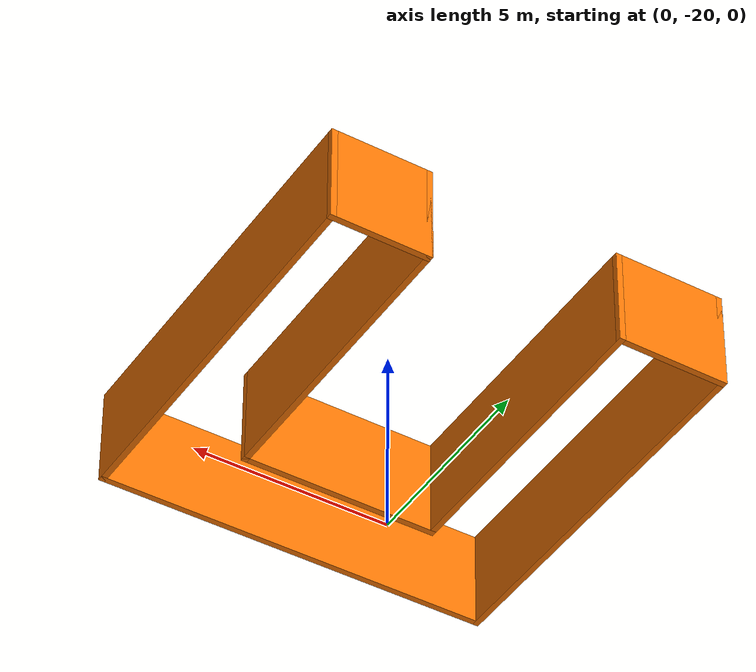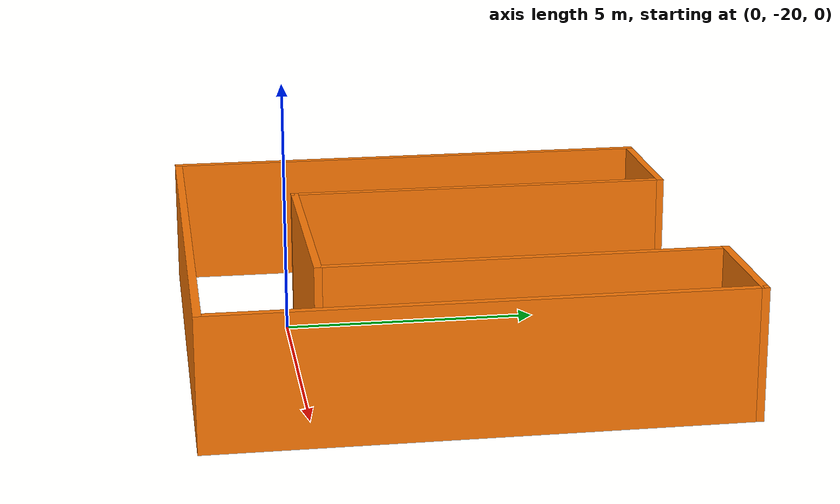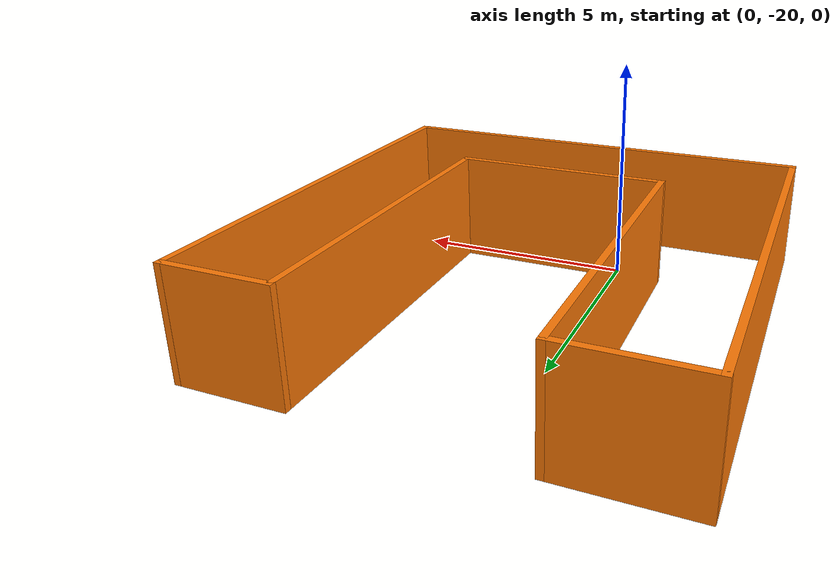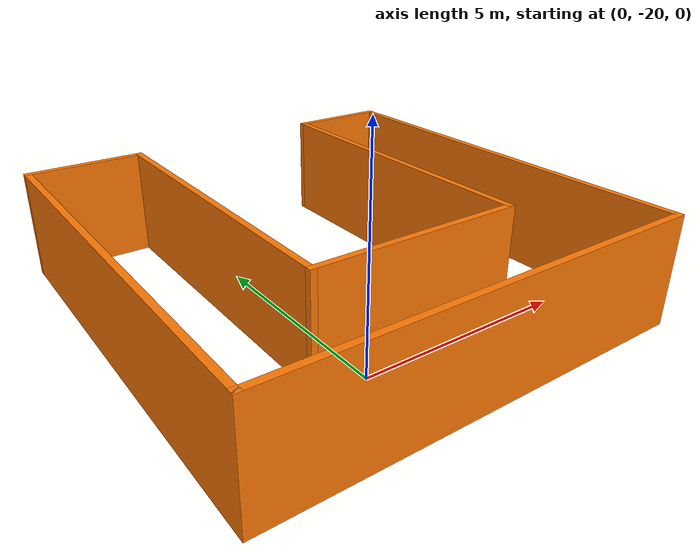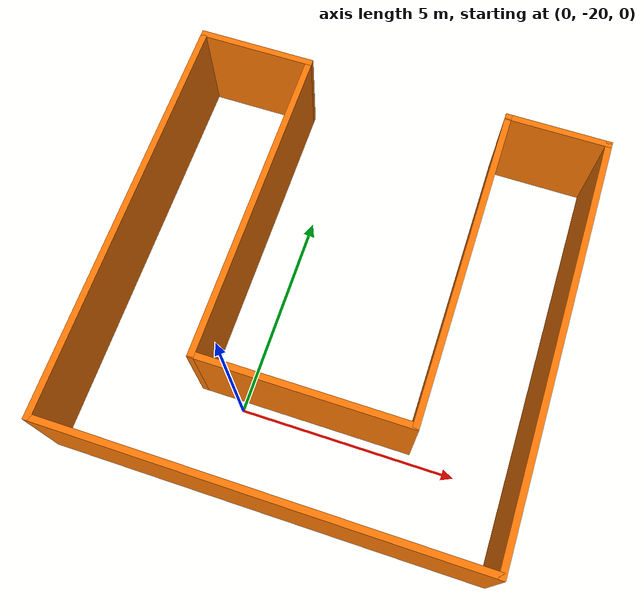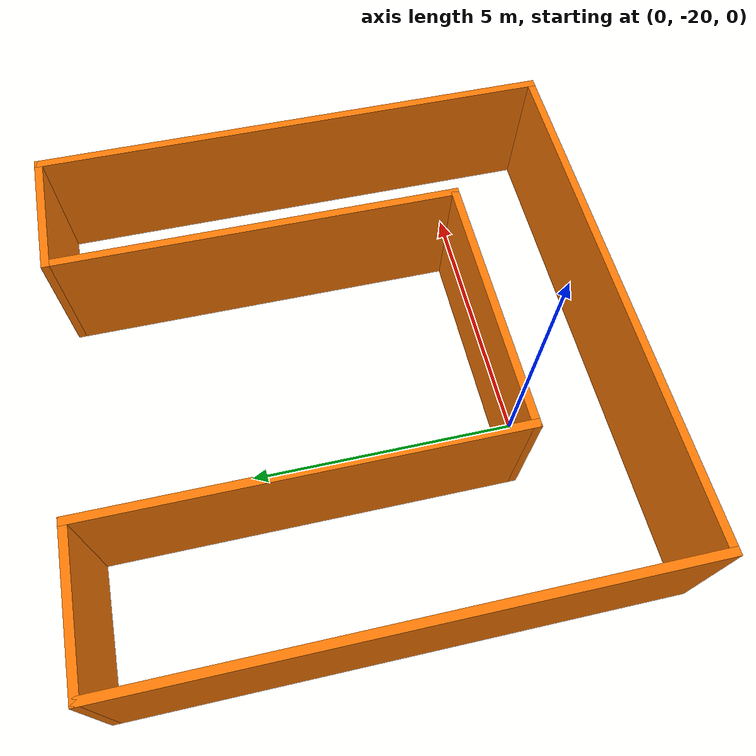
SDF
<?xml version='1.0'?>
<sdf version='1.6'>
  <model name='Orange_U'>
    <pose frame=''>1.27121 -17.0382 0 0 -0 0</pose>
    <link name='Wall_37'>
      <collision name='Wall_37_Collision'>
        <geometry>
          <box>
            <size>10 0.15 2.5</size>
          </box>
        </geometry>
        <pose frame=''>0 0 1.25 0 -0 0</pose>
      </collision>
      <visual name='Wall_37_Visual'>
        <pose frame=''>0 0 1.25 0 -0 0</pose>
        <geometry>
          <box>
            <size>10 0.15 2.5</size>
          </box>
        </geometry>
        <material>
          <script>
            <uri>file://media/materials/scripts/gazebo.material</uri>
            <name>Gazebo/Grey</name>
          </script>
          <ambient>0.996078 0.47451 0.0196078 1</ambient>
        </material>
      </visual>
      <pose frame=''>-4.925 1e-06 0 0 0 -1.5708</pose>
    </link>
    <link name='Wall_38'>
      <collision name='Wall_38_Collision'>
        <geometry>
          <box>
            <size>10 0.15 2.5</size>
          </box>
        </geometry>
        <pose frame=''>0 0 1.25 0 -0 0</pose>
      </collision>
      <visual name='Wall_38_Visual'>
        <pose frame=''>0 0 1.25 0 -0 0</pose>
        <geometry>
          <box>
            <size>10 0.15 2.5</size>
          </box>
        </geometry>
        <material>
          <script>
            <uri>file://media/materials/scripts/gazebo.material</uri>
            <name>Gazebo/Grey</name>
          </script>
          <ambient>0.996078 0.47451 0.0196078 1</ambient>
        </material>
      </visual>
      <pose frame=''>0 -4.925 0 0 -0 0</pose>
    </link>
    <link name='Wall_39'>
      <collision name='Wall_39_Collision'>
        <geometry>
          <box>
            <size>10 0.15 2.5</size>
          </box>
        </geometry>
        <pose frame=''>0 0 1.25 0 -0 0</pose>
      </collision>
      <visual name='Wall_39_Visual'>
        <pose frame=''>0 0 1.25 0 -0 0</pose>
        <geometry>
          <box>
            <size>10 0.15 2.5</size>
          </box>
        </geometry>
        <material>
          <script>
            <uri>file://media/materials/scripts/gazebo.material</uri>
            <name>Gazebo/Grey</name>
          </script>
          <ambient>0.996078 0.47451 0.0196078 1</ambient>
        </material>
      </visual>
      <pose frame=''>4.925 1e-06 0 0 -0 1.5708</pose>
    </link>
    <link name='Wall_40'>
      <collision name='Wall_40_Collision'>
        <geometry>
          <box>
            <size>2.5 0.15 2.5</size>
          </box>
        </geometry>
        <pose frame=''>0 0 1.25 0 -0 0</pose>
      </collision>
      <visual name='Wall_40_Visual'>
        <pose frame=''>0 0 1.25 0 -0 0</pose>
        <geometry>
          <box>
            <size>2.5 0.15 2.5</size>
          </box>
        </geometry>
        <material>
          <script>
            <uri>file://media/materials/scripts/gazebo.material</uri>
            <name>Gazebo/Grey</name>
          </script>
          <ambient>0.996078 0.47451 0.0196078 1</ambient>
        </material>
      </visual>
      <pose frame=''>3.75 4.925 0 0 -0 3.14159</pose>
    </link>
    <link name='Wall_41'>
      <collision name='Wall_41_Collision'>
        <geometry>
          <box>
            <size>7.75 0.15 2.5</size>
          </box>
        </geometry>
        <pose frame=''>0 0 1.25 0 -0 0</pose>
      </collision>
      <visual name='Wall_41_Visual'>
        <pose frame=''>0 0 1.25 0 -0 0</pose>
        <geometry>
          <box>
            <size>7.75 0.15 2.5</size>
          </box>
        </geometry>
        <material>
          <script>
            <uri>file://media/materials/scripts/gazebo.material</uri>
            <name>Gazebo/Grey</name>
          </script>
          <ambient>0.996078 0.47451 0.0196078 1</ambient>
        </material>
      </visual>
      <pose frame=''>2.575 1.125 0 0 0 -1.5708</pose>
    </link>
    <link name='Wall_42'>
      <collision name='Wall_42_Collision'>
        <geometry>
          <box>
            <size>5 0.15 2.5</size>
          </box>
        </geometry>
        <pose frame=''>0 0 1.25 0 -0 0</pose>
      </collision>
      <visual name='Wall_42_Visual'>
        <pose frame=''>0 0 1.25 0 -0 0</pose>
        <geometry>
          <box>
            <size>5 0.15 2.5</size>
          </box>
        </geometry>
        <material>
          <script>
            <uri>file://media/materials/scripts/gazebo.material</uri>
            <name>Gazebo/Grey</name>
          </script>
          <ambient>0.996078 0.47451 0.0196078 1</ambient>
        </material>
      </visual>
      <pose frame=''>0.15 -2.675 0 0 -0 3.14159</pose>
    </link>
    <link name='Wall_43'>
      <collision name='Wall_43_Collision'>
        <geometry>
          <box>
            <size>7.75 0.15 2.5</size>
          </box>
        </geometry>
        <pose frame=''>0 0 1.25 0 -0 0</pose>
      </collision>
      <visual name='Wall_43_Visual'>
        <pose frame=''>0 0 1.25 0 -0 0</pose>
        <geometry>
          <box>
            <size>7.75 0.15 2.5</size>
          </box>
        </geometry>
        <material>
          <script>
            <uri>file://media/materials/scripts/gazebo.material</uri>
            <name>Gazebo/Grey</name>
          </script>
          <ambient>0.996078 0.47451 0.0196078 1</ambient>
        </material>
      </visual>
      <pose frame=''>-2.275 1.125 0 0 -0 1.5708</pose>
    </link>
    <link name='Wall_44'>
      <collision name='Wall_44_Collision'>
        <geometry>
          <box>
            <size>2.8 0.15 2.5</size>
          </box>
        </geometry>
        <pose frame=''>0 0 1.25 0 -0 0</pose>
      </collision>
      <visual name='Wall_44_Visual'>
        <pose frame=''>0 0 1.25 0 -0 0</pose>
        <geometry>
          <box>
            <size>2.8 0.15 2.5</size>
          </box>
        </geometry>
        <material>
          <script>
            <uri>file://media/materials/scripts/gazebo.material</uri>
            <name>Gazebo/Grey</name>
          </script>
          <ambient>0.996078 0.47451 0.0196078 1</ambient>
        </material>
      </visual>
      <pose frame=''>-3.6 4.925 0 0 -0 3.14159</pose>
    </link>
    <static>1</static>
  </model>
</sdf>
